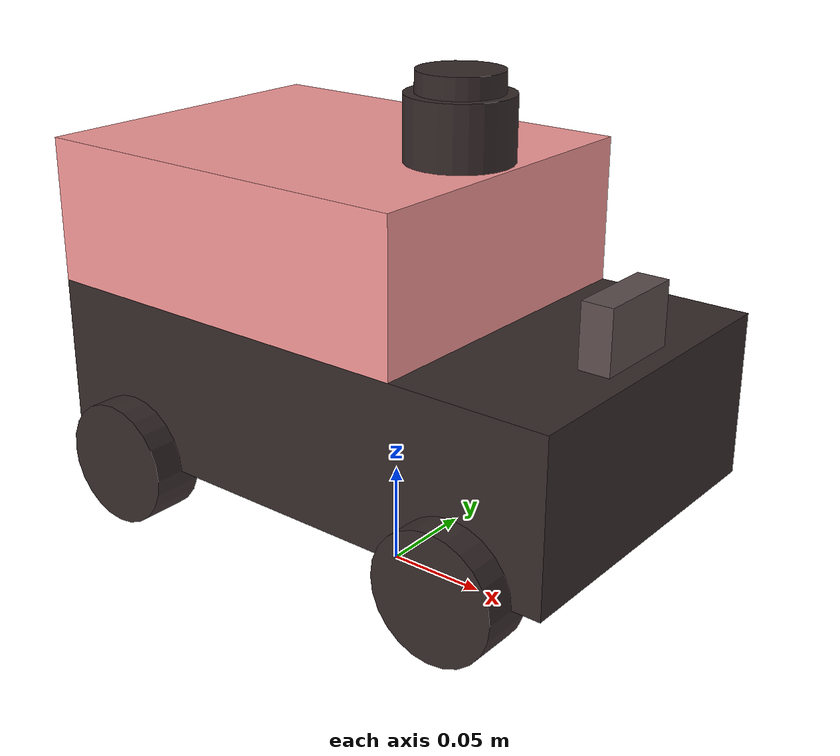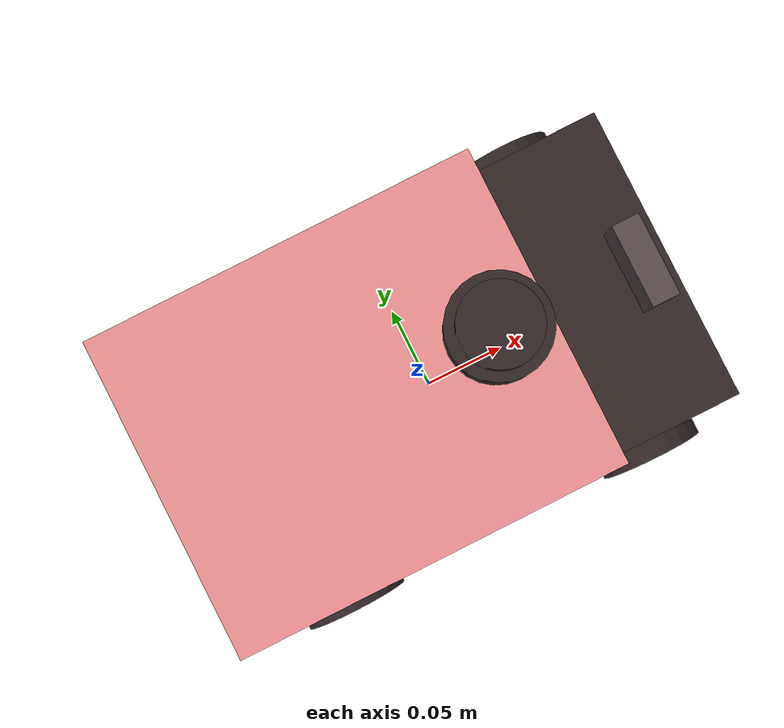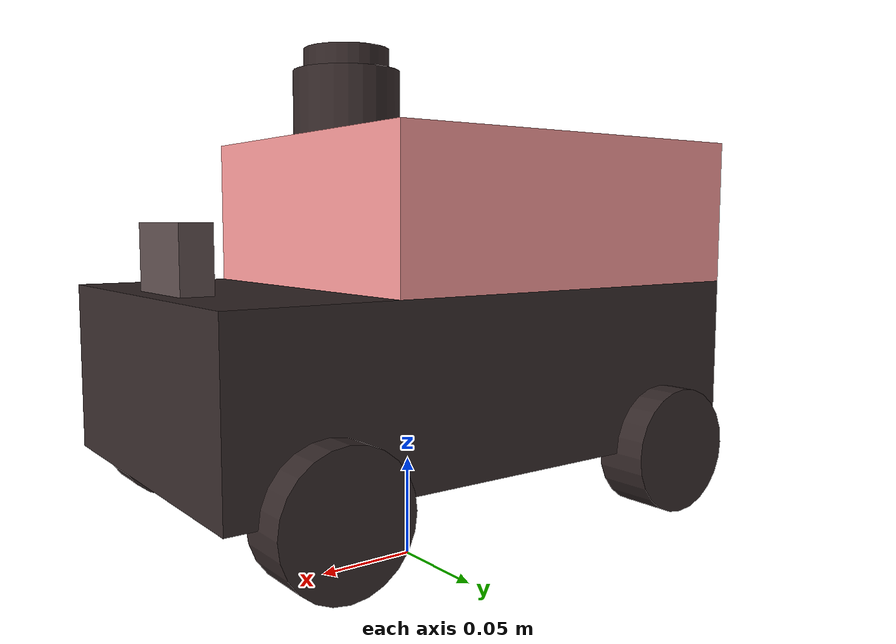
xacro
<?xml version="1.0" encoding="utf-8"?>
<robot name="mycar" xmlns:xacro="http://wiki.ros.org/xacro">

  <!-- 基础参数 -->
  <xacro:property name="PI" value="3.1415926"/>
  <xacro:property name="Track" value="0.1682"/>
  <xacro:property name="WheelBase" value="0.189"/>
  <xacro:property name="WheelRadius" value="0.03"/>
  <xacro:property name="WheelWidth" value="0.025"/>
  <xacro:property name="BaseBoxLength" value="0.276"/>
  <xacro:property name="BaseBoxWidth" value="0.164"/>
  <xacro:property name="BaseBoxHeight" value="0.08"/>
  <xacro:property name="SteerLinkLength" value="0.02"/>

  <!-- 前轮转向宏 -->
  <xacro:macro name="front_wheel" params="prefix side_y">
    <!-- 转向关节连接的link -->
    <link name="${prefix}_steer_link">
      <visual>
        <origin xyz="0 0 0" rpy="0 0 0"/>
        <geometry>
          <cylinder radius="0.008" length="${SteerLinkLength}"/>
        </geometry>
        <material name="steer_mat">
          <color rgba="0.5 0.5 0.5 1.0"/>
        </material>
      </visual>
    </link>

    <!-- 转向关节（绕Z轴旋转） -->
    <joint name="${prefix}_steer_joint" type="revolute">
      <parent link="base_link"/>
      <child link="${prefix}_steer_link"/>
      <origin xyz="${WheelBase / 2} ${side_y * Track / 2} ${WheelRadius}" rpy="0 0 0"/>
      <axis xyz="0 0 1"/>
      <limit lower="-0.55" upper="0.55" effort="100" velocity="10"/>
    </joint>

    <!-- 驱动轮link -->
    <link name="${prefix}_wheel_link">
      <visual>
        <origin xyz="0 0 0" rpy="${side_y * (-PI / 2)} 0 0"/>
        <geometry>
          <cylinder radius="${WheelRadius}" length="${WheelWidth}"/>
        </geometry>
        <material name="wheel_mat">
          <color rgba="0.21176470588235294 0.16470588235294117 0.16470588235294117 1.0"/>
        </material>
      </visual>
    </link>

    <!-- 驱动关节（绕Y轴旋转） -->
    <joint name="${prefix}_wheel_joint" type="continuous">
      <parent link="${prefix}_steer_link"/>
      <child link="${prefix}_wheel_link"/>
      <origin xyz="0 0 0" rpy="0 0 0"/>
      <axis xyz="0 ${side_y} 0"/>
    </joint>
  </xacro:macro>

  <!-- 后轮驱动宏 -->
  <xacro:macro name="rear_wheel" params="prefix side_y">
    <link name="${prefix}_wheel_link">
      <visual>
        <origin xyz="0 0 0" rpy="${side_y * (-PI / 2)} 0 0"/>
        <geometry>
          <cylinder radius="${WheelRadius}" length="${WheelWidth}"/>
        </geometry>
        <material name="wheel_mat">
          <color rgba="0.21176470588235294 0.16470588235294117 0.16470588235294117 1.0"/>
        </material>
      </visual>
    </link>

    <joint name="${prefix}_wheel_joint" type="continuous">
      <parent link="base_link"/>
      <child link="${prefix}_wheel_link"/>
      <origin xyz="${-WheelBase / 2} ${side_y * Track / 2} ${WheelRadius}" rpy="0 0 0"/>
      <axis xyz="0 ${side_y} 0"/>
    </joint>
  </xacro:macro>

  <!-- base_footprint -->
  <link name="base_footprint"/>

  <joint name="base_footprint_joint" type="fixed">
    <parent link="base_footprint"/>
    <child link="base_link"/>
    <origin xyz="0 0 ${WheelRadius}" rpy="0 0 0"/>
  </joint>

  <!-- 车体 -->
  <link name="base_link">
    <visual>
      <geometry>
        <box size="${BaseBoxLength} ${BaseBoxWidth} ${BaseBoxHeight}"/>
      </geometry>
      <origin xyz="0 0 ${BaseBoxHeight / 2 + WheelRadius}" rpy="0 0 0"/>
      <material name="rgb(54, 42, 42)">
        <color rgba="0.21176470588235294 0.16470588235294117 0.16470588235294117 1.0"/>
      </material>
    </visual>
  </link>

  <!-- IMU link -->
  <link name="gyro_link"/>

  <joint name="gyro_joint" type="fixed">
    <parent link="base_link"/>
    <child link="gyro_link"/>
    <origin xyz="0 0 0" rpy="0 0 0"/>
  </joint>

  <!-- 电路板 -->
  <link name="board_link">
    <visual>
      <geometry>
        <box size="0.200 ${BaseBoxWidth} 0.07"/>
      </geometry>
      <origin xyz="0 0 0.035" rpy="0 0 0"/>
      <material name="rgba(246,152,152,1)">
        <color rgba="0.9647058823529412 0.596078431372549 0.596078431372549 1"/>
      </material>
    </visual>
  </link>

  <joint name="board_joint" type="fixed">
    <parent link="base_link"/>
    <child link="board_link"/>
    <origin xyz="${-(BaseBoxLength - 0.200) / 2} 0 ${WheelRadius + BaseBoxHeight}" rpy="0 0 0"/>
  </joint>

  <!-- 摄像头 -->
  <link name="camera">
    <visual>
      <geometry>
        <box size="0.015 0.045 0.03"/>
      </geometry>
      <origin xyz="0 0 0.015" rpy="0 0 0"/>
      <material name="rgba(93,78,78,1)">
        <color rgba="0.36470588235294116 0.3058823529411765 0.3058823529411765 1"/>
      </material>
    </visual>
  </link>

  <joint name="camera_joint" type="fixed">
    <parent link="base_link"/>
    <child link="camera"/>
    <origin xyz="${(BaseBoxLength - 0.015) / 2 - 0.01} 0 ${WheelRadius + BaseBoxHeight}" rpy="0 0 0"/>
  </joint>

  <!-- 前轮（转向+驱动） -->
  <xacro:front_wheel prefix="front_left"  side_y="1"/>
  <xacro:front_wheel prefix="front_right" side_y="-1"/>

  <!-- 后轮（仅驱动） -->
  <xacro:rear_wheel prefix="rear_left"  side_y="1"/>
  <xacro:rear_wheel prefix="rear_right" side_y="-1"/>

  <!-- 激光雷达 -->
  <link name="laser">
    <visual>
      <origin xyz="0 0 0.015" rpy="0 0 0"/>
      <geometry>
        <cylinder length="0.03" radius="0.025"/>
      </geometry>
      <material name="dark_brown">
        <color rgba="0.21176470588235294 0.16470588235294117 0.16470588235294117 1.0"/>
      </material>
    </visual>

    <visual>
      <origin xyz="0 0 0.035" rpy="0 0 0"/>
      <geometry>
        <cylinder length="0.01" radius="0.020"/>
      </geometry>
      <material name="dark_brown"/>
    </visual>
  </link>

  <joint name="laser_joint" type="fixed">
    <parent link="board_link"/>
    <child link="laser"/>
    <origin xyz="0.073 0 0.07" rpy="0 0 0"/>
  </joint>

</robot>
